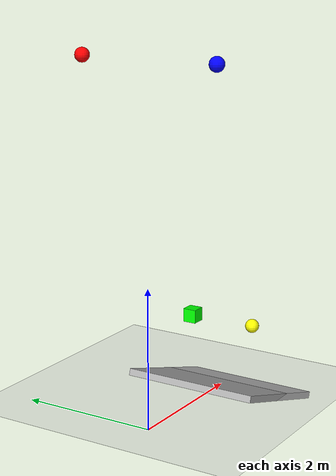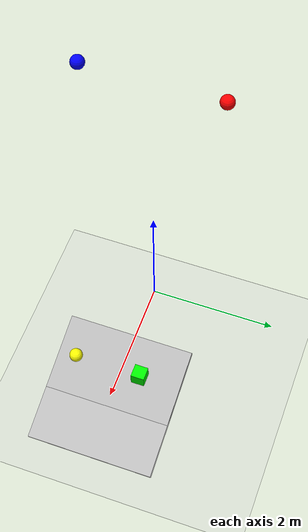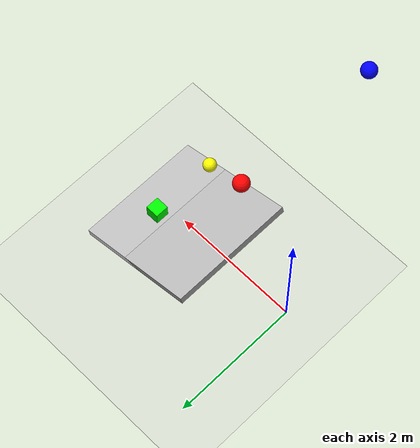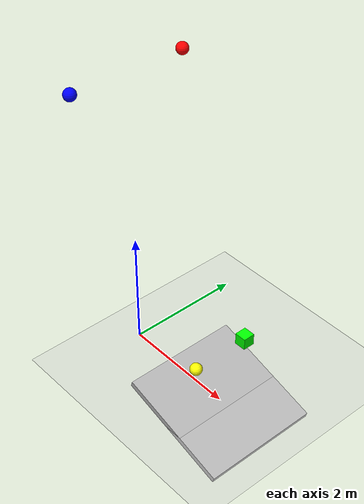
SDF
<?xml version="1.0" ?>
<sdf version="1.7">
  <world name="physics_gravity_demo">
    <!-- Include default sun and ground plane -->
    <include>
      <uri>model://sun</uri>
    </include>

    <include>
      <uri>model://ground_plane</uri>
    </include>

    <!-- Physics configuration -->
    <physics name="default_physics" type="ode">
      <gravity>0 0 -9.8</gravity>
      <ode>
        <solver>
          <type>quick</type>
          <iters>10</iters>
          <sor>1.3</sor>
        </solver>
        <constraints>
          <cfm>0.0</cfm>
          <erp>0.2</erp>
          <contact_max_correcting_vel>100.0</contact_max_correcting_vel>
          <contact_surface_layer>0.001</contact_surface_layer>
        </constraints>
      </ode>
    </physics>

    <!-- Objects demonstrating gravity -->
    <model name="heavy_sphere">
      <pose>0 1 5 0 0 0</pose>
      <link name="sphere_link">
        <visual name="sphere_visual">
          <geometry>
            <sphere>
              <radius>0.1</radius>
            </sphere>
          </geometry>
          <material>
            <ambient>1 0 0 1</ambient>
            <diffuse>1 0 0 1</diffuse>
          </material>
        </visual>
        <collision name="sphere_collision">
          <geometry>
            <sphere>
              <radius>0.1</radius>
            </sphere>
          </geometry>
        </collision>
        <inertial>
          <mass>10.0</mass>
          <inertia>
            <ixx>0.04</ixx>
            <ixy>0</ixy>
            <ixz>0</ixz>
            <iyy>0.04</iyy>
            <iyz>0</iyz>
            <izz>0.04</izz>
          </inertia>
        </inertial>
      </link>
    </model>

    <model name="light_sphere">
      <pose>0 -1 5 0 0 0</pose>
      <link name="sphere_link">
        <visual name="sphere_visual">
          <geometry>
            <sphere>
              <radius>0.1</radius>
            </sphere>
          </geometry>
          <material>
            <ambient>0 0 1 1</ambient>
            <diffuse>0 0 1 1</diffuse>
          </material>
        </visual>
        <collision name="sphere_collision">
          <geometry>
            <sphere>
              <radius>0.1</radius>
            </sphere>
          </geometry>
        </collision>
        <inertial>
          <mass>1.0</mass>
          <inertia>
            <ixx>0.004</ixx>
            <ixy>0</ixy>
            <ixz>0</ixz>
            <iyy>0.004</iyy>
            <iyz>0</iyz>
            <izz>0.004</izz>
          </inertia>
        </inertial>
      </link>
    </model>

    <!-- Inclined plane to demonstrate friction -->
    <model name="inclined_plane">
      <pose>2 0 0 0 0.3 0</pose>
      <link name="plane_link">
        <visual name="plane_visual">
          <geometry>
            <box>
              <size>2 2 0.1</size>
            </box>
          </geometry>
          <material>
            <ambient>0.5 0.5 0.5 1</ambient>
            <diffuse>0.7 0.7 0.7 1</diffuse>
          </material>
        </visual>
        <collision name="plane_collision">
          <geometry>
            <box>
              <size>2 2 0.1</size>
            </box>
          </geometry>
        </collision>
        <inertial>
          <mass>100</mass>
          <inertia>
            <ixx>100</ixx>
            <ixy>0</ixy>
            <ixz>0</ixz>
            <iyy>100</iyy>
            <iyz>0</iyz>
            <izz>100</izz>
          </inertia>
        </inertial>
      </link>
    </model>

    <!-- Objects with different friction coefficients -->
    <model name="high_friction_box">
      <pose>2 0.5 1 0 0 0</pose>
      <link name="box_link">
        <visual name="box_visual">
          <geometry>
            <box>
              <size>0.2 0.2 0.2</size>
            </box>
          </geometry>
          <material>
            <ambient>0 1 0 1</ambient>
            <diffuse>0 1 0 1</diffuse>
          </material>
        </visual>
        <collision name="box_collision">
          <geometry>
            <box>
              <size>0.2 0.2 0.2</size>
            </box>
          </geometry>
          <surface>
            <friction>
              <ode>
                <mu>1.0</mu>
                <mu2>1.0</mu2>
              </ode>
            </friction>
          </surface>
        </collision>
        <inertial>
          <mass>1.0</mass>
          <inertia>
            <ixx>0.008</ixx>
            <ixy>0</ixy>
            <ixz>0</ixz>
            <iyy>0.008</iyy>
            <iyz>0</iyz>
            <izz>0.008</izz>
          </inertia>
        </inertial>
      </link>
    </model>

    <model name="low_friction_sphere">
      <pose>2 -0.5 1 0 0 0</pose>
      <link name="sphere_link">
        <visual name="sphere_visual">
          <geometry>
            <sphere>
              <radius>0.1</radius>
            </sphere>
          </geometry>
          <material>
            <ambient>1 1 0 1</ambient>
            <diffuse>1 1 0 1</diffuse>
          </material>
        </visual>
        <collision name="sphere_collision">
          <geometry>
            <sphere>
              <radius>0.1</radius>
            </sphere>
          </geometry>
          <surface>
            <friction>
              <ode>
                <mu>0.1</mu>
                <mu2>0.1</mu2>
              </ode>
            </friction>
          </surface>
        </collision>
        <inertial>
          <mass>1.0</mass>
          <inertia>
            <ixx>0.004</ixx>
            <ixy>0</ixy>
            <ixz>0</ixz>
            <iyy>0.004</iyy>
            <iyz>0</iyz>
            <izz>0.004</izz>
          </inertia>
        </inertial>
      </link>
    </model>
  </world>
</sdf>
